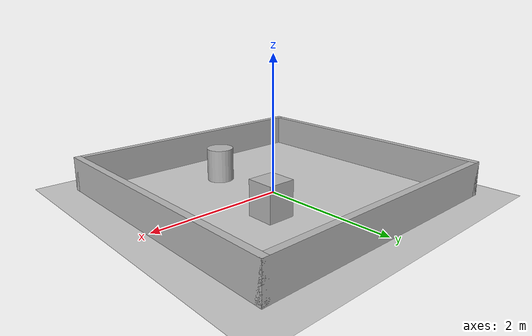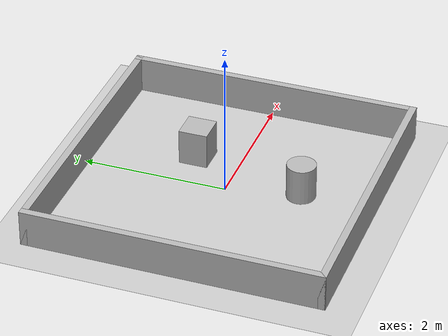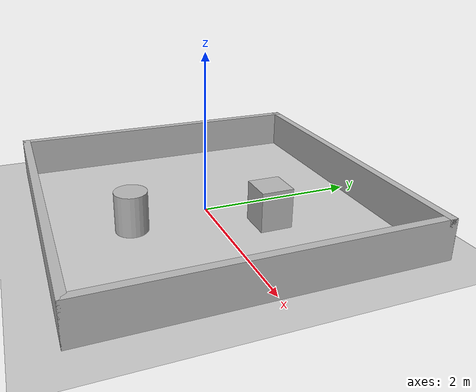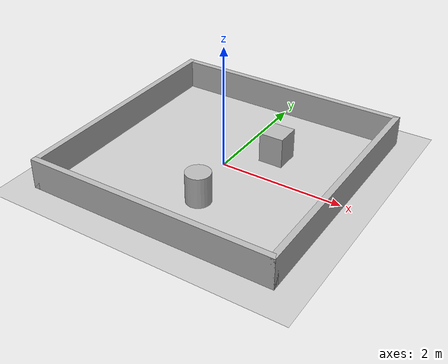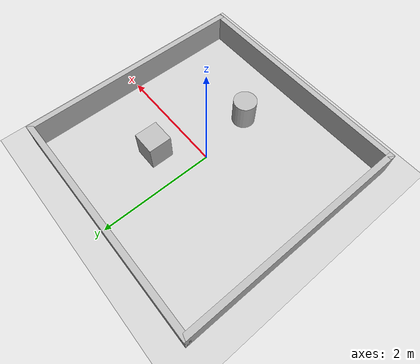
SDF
<?xml version="1.0"?>
<sdf version="1.6">
  <world name="lab_arena">
    <include><uri>model://ground_plane</uri></include>
    <include><uri>model://sun</uri></include>

    <plugin name="gazebo_ros_state" filename="libgazebo_ros_state.so">
      <ros><namespace>/gazebo</namespace></ros>
      <update_rate>10.0</update_rate>
    </plugin>

    <model name="wall_north"><static>true</static><pose>0 2 0.25 0 0 0</pose>
      <link name="link">
        <collision name="c"><geometry><box><size>4.1 0.1 0.5</size></box></geometry></collision>
        <visual name="v"><geometry><box><size>4.1 0.1 0.5</size></box></geometry></visual>
      </link></model>
    <model name="wall_south"><static>true</static><pose>0 -2 0.25 0 0 0</pose>
      <link name="link">
        <collision name="c"><geometry><box><size>4.1 0.1 0.5</size></box></geometry></collision>
        <visual name="v"><geometry><box><size>4.1 0.1 0.5</size></box></geometry></visual>
      </link></model>
    <model name="wall_east"><static>true</static><pose>2 0 0.25 0 0 0</pose>
      <link name="link">
        <collision name="c"><geometry><box><size>0.1 4.1 0.5</size></box></geometry></collision>
        <visual name="v"><geometry><box><size>0.1 4.1 0.5</size></box></geometry></visual>
      </link></model>
    <model name="wall_west"><static>true</static><pose>-2 0 0.25 0 0 0</pose>
      <link name="link">
        <collision name="c"><geometry><box><size>0.1 4.1 0.5</size></box></geometry></collision>
        <visual name="v"><geometry><box><size>0.1 4.1 0.5</size></box></geometry></visual>
      </link></model>

    <model name="obstacle_box"><static>true</static><pose>0.6 0.6 0.25 0 0 0</pose>
      <link name="link">
        <collision name="c"><geometry><box><size>0.4 0.4 0.5</size></box></geometry></collision>
        <visual name="v"><geometry><box><size>0.4 0.4 0.5</size></box></geometry></visual>
      </link></model>
    <model name="obstacle_cyl"><static>true</static><pose>0.2 -1.0 0.25 0 0 0</pose>
      <link name="link">
        <collision name="c"><geometry><cylinder><radius>0.2</radius><length>0.5</length></cylinder></geometry></collision>
        <visual name="v"><geometry><cylinder><radius>0.2</radius><length>0.5</length></cylinder></geometry></visual>
      </link></model>
  </world>
</sdf>
